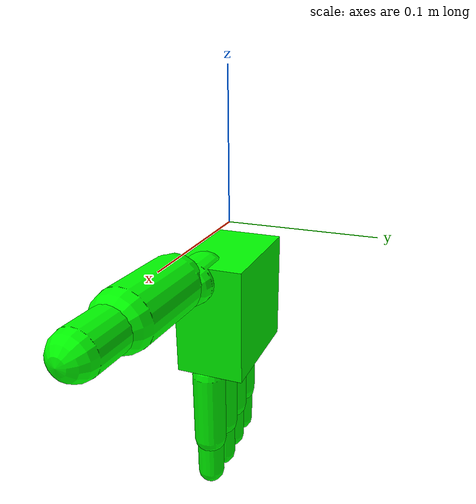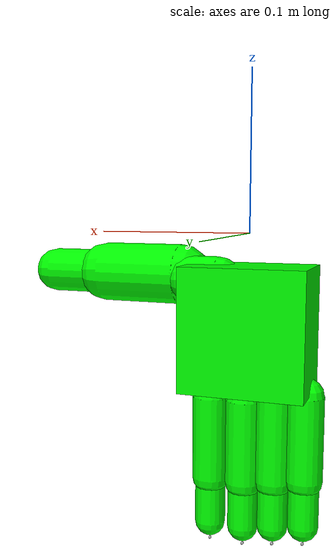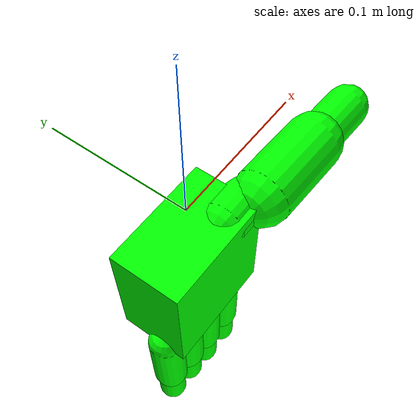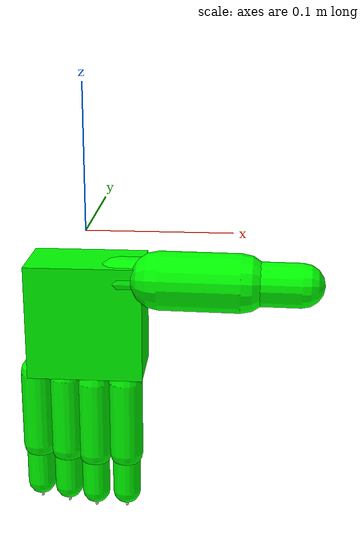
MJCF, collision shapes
<mujoco model="xhand_left">
  <compiler angle="radian" meshdir="assets/" />

  <default>
    <!-- disable all contacts and use explicit collision pairs -->
    <geom density="800" condim="1" contype="0" conaffinity="0" />
    <!-- with this setting, the response time is around 1s -->
    <position kp="300" dampratio="1.0" inheritrange="1" />
    <joint damping="0.0" armature="1.0" frictionloss="0.0" />
    <site size="0.005" type="sphere" rgba="1 0 0 1" group="3" />
  </default>

  <asset>
  <!-- 这里面定义了一堆 mesh，都是手的各个部分，这些 stl 对应的是各个连杆的几何外形-->
    <texture type="skybox" builtin="gradient" rgb1="0.3 0.5 0.7" rgb2="0 0 0" width="512"
      height="3072" />
    <texture type="2d" name="left_groundplane" builtin="checker" mark="edge" rgb1="0.2 0.3 0.4"
      rgb2="0.1 0.2 0.3"
      markrgb="0.8 0.8 0.8" width="300" height="300" />
    <material name="left_groundplane" texture="left_groundplane" texuniform="true"
      texrepeat="5 5"
      reflectance="0.2" />
    <mesh name="left_hand_link" content_type="model/stl" file="left_hand_link.STL" />
    <mesh name="left_hand_thumb_bend_link" content_type="model/stl"
      file="left_hand_thumb_bend_link.STL" />
    <mesh name="left_hand_thumb_rota_link1" content_type="model/stl"
      file="left_hand_thumb_rota_link1.STL" />
    <mesh name="left_hand_thumb_rota_link2" content_type="model/stl"
      file="left_hand_thumb_rota_link2.STL" />
    <mesh name="left_hand_index_bend_link" content_type="model/stl"
      file="left_hand_index_bend_link.STL" />
    <mesh name="left_hand_index_rota_link1" content_type="model/stl"
      file="left_hand_index_rota_link1.STL" />
    <mesh name="left_hand_index_rota_link2" content_type="model/stl"
      file="left_hand_index_rota_link2.STL" />
    <mesh name="left_hand_mid_link1" content_type="model/stl" file="left_hand_mid_link1.STL" />
    <mesh name="left_hand_mid_link2" content_type="model/stl" file="left_hand_mid_link2.STL" />
    <mesh name="left_hand_ring_link1" content_type="model/stl" file="left_hand_ring_link1.STL" />
    <mesh name="left_hand_ring_link2" content_type="model/stl" file="left_hand_ring_link2.STL" />
    <mesh name="left_hand_pinky_link1" content_type="model/stl" file="left_hand_pinky_link1.STL" />
    <mesh name="left_hand_pinky_link2" content_type="model/stl" file="left_hand_pinky_link2.STL" />
  </asset>

  <worldbody>
  <!-- 刚体节点，也就是刚体树结构，-->
  <!-- 可以看到下面的 body 是逐渐缩进去的，也就是说子 body 的位置是相对于父 body 的 -->
  <!-- 这个 body 可以理解为 urdf 里面的 link，但是注意，这个 body 是一个虚拟的容器，有坐标系这些，不是实体 mesh，后面的 geom 里面的才是实体 mesh，才有具体的几何形状 -->
  <!-- 需要记住，每一个body 下的joint 影响的是这个 body 相对他父 body 的状态，所以每一个 joint 的取名都是他的父 body 的名字加上_joint -->
    <body name="L_forearm_ty_link">
      <camera name="left_track" pos="0.868 -0.348 -0.175"
        xyaxes="0.037 0.999 -0.000 0.011 -0.000 1.000" />
      <inertial pos="0 0 0" mass="0.1" diaginertia="0.01 0.01 0.01" />
      <!-- 这个 joint 是用来控制左手腕（L）在 x 方向上的运动 -->
      <joint name="L_forearm_tx_link_joint" pos="0 0 0" axis="1 0 0" type="slide" range="-5 5"
      />
      <body name="L_forearm_tz_link">
        <inertial pos="0 0 0" mass="0.1" diaginertia="0.01 0.01 0.01" />
        <!-- 这个 joint 是用来控制左手腕（L）在 y 方向上的运动 -->
        <!-- 定义的是 tz_link 相对于 ty_link 的状态 -->
        <joint name="L_forearm_ty_link_joint" pos="0 0 0" axis="0 1 0" type="slide" range="-5 5"
        />
        <body name="L_forearm_roll_link">
          <inertial pos="0 0 0" mass="0.1" diaginertia="0.01 0.01 0.01" />
          <!-- 这个 joint 是用来控制左手腕（L）在 z 方向上的运动 -->
          <!-- 定义的是 roll_link 相对于 tz_link 的状态 -->
          <joint name="L_forearm_tz_link_joint" pos="0 0 0" axis="0 0 1" type="slide" range="-5 5"
          />
          <body name="L_forearm_pitch_link">
            <inertial pos="0 0 0" mass="0.1" diaginertia="0.01 0.01 0.01" />
            <!-- 这个 joint 是用来控制左手腕（L）的旋转 -->
            <joint name="L_forearm_roll_link_joint" pos="0 0 0" axis="0 0 1" range="-6.2 6.2"
            />
            <body name="L_forearm_yaw_link">
              <inertial pos="0 0 0" mass="0.1" diaginertia="0.01 0.01 0.01" />
              <!-- 这个 joint 是用来控制左手腕（L）的上下点头抬头 -->
              <joint name="L_forearm_pitch_link_joint" pos="0 0 0" axis="1 0 0" range="-6.2 6.2"
              />
              <body name="left_hand_link">
                <inertial pos="-0.00718397 -0.00342396 -0.0584832"
                  quat="0.712643 0.0910084 0.100904 0.688241" mass="0.529961"
                  diaginertia="0.000678163 0.000491768 0.000335587" />
                <!-- 这个 joint 是用来控制左手腕（L）的左右摆头 -->
                <joint name="L_forearm_yaw_link_joint" pos="0 0 0" axis="0 -1 0" range="-6.2 6.2"
                />
                <!-- 上面的这 6 个关节，其实就是在 MuJoCo 里手动搭了一个“6 自由度腕部基座” -->
                <!-- 前面也提到了，前面那些 body 都是虚拟容器，没有具体的几何形状，下面的 geo 才是真正的有碰撞的 mesh，会读取 STL 文件的 -->
                <!-- 还有一个要注意的，这个 geom 是visual，mesh，表示外观；下面的 type=box 表示碰撞形状 -->
                <geom name="left_hand_link_visual" type="mesh" contype="0" conaffinity="0" group="1"
                  density="0" rgba="0.866667 0.866667 0.890196 1" mesh="left_hand_link" />
                <geom name="collision_hand_left_palm_0" type="box" size="0.04 0.024 0.04"
                  pos="0 0 -0.06"
                  rgba="0 1 0 1" group="3" />
                <site name="left_palm" pos="0 0 0" type="box" size="0.01 0.02 0.03" quat="0 1 -1 0" />
                <body name="left_hand_thumb_bend_link" pos="0.0228 -0.0095 -0.0305">
                  <inertial pos="0.0145291 0.000901344 -0.000127912"
                    quat="-0.028902 0.68936 -0.0167067 0.72365" mass="0.00985534"
                    diaginertia="1.30648e-06 1.29142e-06 5.40957e-07" />
                  <joint name="left_hand_thumb_bend_joint" pos="0 0 0" axis="0 0 -1" range="0 1.83"
                  />
                  <geom name="left_thumb_bend_visual" type="mesh" contype="0" conaffinity="0"
                    group="1" density="0" rgba="0.890196 0.890196 0.913725 1"
                    mesh="left_hand_thumb_bend_link" />
                  <geom name="collision_hand_left_thumb_2" type="capsule" size="0.015"
                    fromto="0 0 0 0.02 0 0"
                    rgba="0 1 0 1" group="3" />
                  <body name="left_hand_thumb_rota_link1" pos="0.028599 -0.0083177 0.00178"
                    quat="0.99124 -0.130499 0.00265603 -0.0201745">
                    <inertial pos="0.0279279 0.000121046 -0.000277543"
                      quat="0.0994744 0.703642 -0.0845458 0.698459" mass="0.153197"
                      diaginertia="5.62164e-05 4.89587e-05 2.23807e-05" />
                    <joint name="left_hand_thumb_rota_joint1" pos="0 0 0" axis="0 1 0"
                      range="-1.05 1.57" />
                    <geom name="left_thumb_rota1_visual" type="mesh" contype="0" conaffinity="0"
                      group="1" density="0" rgba="1 1 1 1" mesh="left_hand_thumb_rota_link1" />
                    <geom name="collision_hand_left_thumb_1" type="capsule" size="0.02"
                      fromto="0 0 0 0.055 0 0" rgba="0 1 0 1"
                      group="3" />
                    <body name="left_hand_thumb_rota_link2" pos="0.0553 0 0">
                      <inertial pos="0.0224529 0.000690615 0.00314279"
                        quat="0.0604386 0.713745 -0.0199603 0.697508" mass="0.037401"
                        diaginertia="9.54692e-06 8.2705e-06 3.92141e-06" />
                      <joint name="left_hand_thumb_rota_joint2" pos="0 0 0" axis="0 1 0"
                        range="-0.17 1.83" />
                      <geom name="left_thumb_rota2_visual" type="mesh" contype="0" conaffinity="0"
                        group="1" density="0" rgba="0.384314 0.384314 0.384314 1"
                        mesh="left_hand_thumb_rota_link2" />
                      <geom name="collision_hand_left_thumb_0" type="capsule" size="0.015"
                        fromto="0 0 0 0.04 0 0"
                        rgba="0 1 0 1"
                        group="3" />
                      <geom size="0.001" pos="0.0504017 0 0" contype="0" conaffinity="0" group="1"
                        density="0" rgba="0.698039 0.698039 0.698039 1" />
                      <site name="left_thumb_tip" pos="0.04 0 -0.012" />
                      <site name="track_hand_left_thumb_tip" pos="0.04 0 -0.012" />
                      <site name="trace_hand_left_thumb_tip" pos="0.04 0 -0.012" />
                    </body>
                  </body>
                </body>
                <body name="left_hand_index_bend_link" pos="0.0265 -0.0065 -0.0899">
                  <inertial pos="-0.000134545 -0.000675884 0.00420851"
                    quat="0.999797 0.0190041 0.00232573 0.00634399" mass="0.0677836"
                    diaginertia="2.16573e-05 2.09935e-05 3.36931e-06" />
                  <joint name="left_hand_index_bend_joint" pos="0 0 0" axis="0 1 0"
                    range="-0.175 0.175" />
                  <geom name="left_index_bend_visual" type="mesh" contype="0" conaffinity="0"
                    group="1" density="0" rgba="0.988235 0.737255 0.517647 1"
                    mesh="left_hand_index_bend_link" />

                  <body name="left_hand_index_rota_link1" pos="0 0 -0.0178">
                    <inertial pos="0.000139769 0.000800517 -0.0356039"
                      quat="0.999865 -0.00809181 0.0131314 0.00566203" mass="0.0630216"
                      diaginertia="2.05301e-05 1.92461e-05 4.135e-06" />
                    <joint name="left_hand_index_joint1" pos="0 0 0" axis="-1 0 0" range="0 1.92"
                    />
                    <geom name="left_index_rota1_visual" type="mesh" contype="0" conaffinity="0"
                      group="1" density="0" rgba="1 1 1 1" mesh="left_hand_index_rota_link1" />
                    <geom name="collision_hand_left_index_1" type="capsule" size="0.012"
                      fromto="0 0 0 0 0 -0.055" rgba="0 1 0 1" group="3" />
                    <body name="left_hand_index_rota_link2" pos="0 0 -0.0558">
                      <inertial pos="0.000338569 -1.93676e-05 -0.0231329"
                        quat="0.935384 -0.00588977 0.0260883 0.35262" mass="0.0179923"
                        diaginertia="3.02409e-06 3.01968e-06 9.82703e-07" />
                      <joint name="left_hand_index_joint2" pos="0 0 0" axis="-1 0 0" range="0 1.92"
                      />
                      <geom name="left_index_rota2_visual" type="mesh" contype="0" conaffinity="0"
                        group="1" density="0" rgba="0.866667 0.866667 0.890196 1"
                        mesh="left_hand_index_rota_link2" />
                      <geom name="collision_hand_left_index_0" type="capsule" size="0.01"
                        fromto="0 0 0 0 0 -0.03" rgba="0 1 0 1" group="3" />
                      <geom size="0.001" pos="0 0 -0.0425" contype="0" conaffinity="0" group="1"
                        density="0" rgba="0.698039 0.698039 0.698039 1" />
                      <site name="left_index_tip" pos="0 -0.004 -0.027" />
                      <site name="track_hand_left_index_tip" pos="0 -0.004 -0.027" />
                      <site name="trace_hand_left_index_tip" pos="0 -0.004 -0.027" />
                    </body>
                  </body>
                </body>
                <body name="left_hand_mid_link1" pos="0.004 -0.0065 -0.1082">
                  <inertial pos="0.00013977 0.000800517 -0.0356039"
                    quat="0.999865 -0.00809181 0.0131314 0.00566198" mass="0.0630216"
                    diaginertia="2.05301e-05 1.92461e-05 4.135e-06" />
                  <joint name="left_hand_mid_joint1" pos="0 0 0" axis="-1 0 0" range="0 1.92"
                  />
                  <geom name="left_middle_link1_visual" type="mesh" contype="0" conaffinity="0"
                    group="1" density="0" rgba="1 1 1 1" mesh="left_hand_mid_link1" />
                  <geom name="collision_hand_left_middle_1" type="capsule" size="0.012"
                    fromto="0 0 0 0 0 -0.055" rgba="0 1 0 1" group="3" />
                  <body name="left_hand_mid_link2" pos="0 0 -0.0558">
                    <inertial pos="0.000338572 -1.93625e-05 -0.0231328"
                      quat="0.935372 -0.00588866 0.0260883 0.352653" mass="0.0179923"
                      diaginertia="3.02409e-06 3.01968e-06 9.82702e-07" />
                    <joint name="left_hand_mid_joint2" pos="0 0 0" axis="-1 0 0" range="0 1.92"
                    />
                    <geom name="left_middle_link2_visual" type="mesh" contype="0" conaffinity="0"
                      group="1" density="0" rgba="0.866667 0.866667 0.890196 1"
                      mesh="left_hand_mid_link2" />
                    <geom name="collision_hand_left_middle_0" type="capsule" size="0.01"
                      fromto="0 0 0 0 0 -0.03" rgba="0 1 0 1" group="3" />
                    <geom size="0.001" pos="0 0 -0.0425" contype="0" conaffinity="0" group="1"
                      density="0" rgba="0.698039 0.698039 0.698039 1" />
                    <site name="left_middle_tip" pos="0 -0.004 -0.027" />
                    <site name="track_hand_left_middle_tip" pos="0 -0.004 -0.027" />
                    <site name="trace_hand_left_middle_tip" pos="0 -0.004 -0.027" />
                  </body>
                </body>
                <body name="left_hand_ring_link1" pos="-0.016 -0.0065 -0.1052">
                  <inertial pos="0.00013977 0.000800517 -0.0356039"
                    quat="0.999865 -0.00809184 0.0131314 0.00566198" mass="0.0630216"
                    diaginertia="2.05301e-05 1.92461e-05 4.13501e-06" />
                  <joint name="left_hand_ring_joint1" pos="0 0 0" axis="-1 0 0" range="0 1.92"
                  />
                  <geom name="left_ring_link1_visual" type="mesh" contype="0" conaffinity="0"
                    group="1" density="0" rgba="1 1 1 1" mesh="left_hand_ring_link1" />
                  <geom name="collision_hand_left_ring_1" type="capsule" size="0.012"
                    fromto="0 0 0 0 0 -0.055" rgba="0 1 0 1" group="3" />
                  <body name="left_hand_ring_link2" pos="0 0 -0.0558">
                    <inertial pos="0.000338569 -1.93676e-05 -0.0231329"
                      quat="0.935384 -0.00588977 0.0260883 0.35262" mass="0.0179923"
                      diaginertia="3.02409e-06 3.01968e-06 9.82703e-07" />
                    <joint name="left_hand_ring_joint2" pos="0 0 0" axis="-1 0 0" range="0 1.92"
                    />
                    <geom name="left_ring_link2_visual" type="mesh" contype="0" conaffinity="0"
                      group="1" density="0" rgba="0.866667 0.866667 0.890196 1"
                      mesh="left_hand_ring_link2" />
                    <geom name="collision_hand_left_ring_0" type="capsule" size="0.01"
                      fromto="0 0 0 0 0 -0.03" rgba="0 1 0 1" group="3" />
                    <geom size="0.001" pos="0 0 -0.0425" contype="0" conaffinity="0" group="1"
                      density="0" rgba="0.698039 0.698039 0.698039 1" />
                    <site name="left_ring_tip" pos="0 -0.004 -0.027" />
                    <site name="track_hand_left_ring_tip" pos="0 -0.004 -0.027" />
                    <site name="trace_hand_left_ring_tip" pos="0 -0.004 -0.027" />
                  </body>
                </body>
                <body name="left_hand_pinky_link1" pos="-0.036 -0.0065 -0.1022">
                  <inertial pos="0.000139769 0.000800517 -0.0356039"
                    quat="0.999865 -0.00809183 0.0131314 0.00566202" mass="0.0630216"
                    diaginertia="2.05301e-05 1.92461e-05 4.135e-06" />
                  <joint name="left_hand_pinky_joint1" pos="0 0 0" axis="-1 0 0" range="0 1.92"
                  />
                  <geom name="left_pinky_link1_visual" type="mesh" contype="0" conaffinity="0"
                    group="1" density="0" rgba="1 1 1 1" mesh="left_hand_pinky_link1" />
                  <geom name="collision_hand_left_pinky_1" type="capsule" size="0.012"
                    fromto="0 0 0 0 0 -0.055" rgba="0 1 0 1" group="3" />
                  <body name="left_hand_pinky_link2" pos="0 0 -0.0558">
                    <inertial pos="0.000338573 -1.93618e-05 -0.0231328"
                      quat="0.935377 -0.00588901 0.0260881 0.35264" mass="0.0179923"
                      diaginertia="3.02409e-06 3.01968e-06 9.82702e-07" />
                    <joint name="left_hand_pinky_joint2" pos="0 0 0" axis="-1 0 0" range="0 1.92"
                    />
                    <geom name="left_pinky_link2_visual" type="mesh" contype="0" conaffinity="0"
                      group="1" density="0" rgba="0.866667 0.866667 0.890196 1"
                      mesh="left_hand_pinky_link2" />
                    <geom name="collision_hand_left_pinky_0" type="capsule" size="0.01"
                      fromto="0 0 0 0 0 -0.03" rgba="0 1 0 1" group="3" />
                    <geom size="0.001" pos="0 0 -0.0425" contype="0" conaffinity="0" group="1"
                      density="0" rgba="0.698039 0.698039 0.698039 1" />
                    <site name="left_pinky_tip" pos="0 -0.004 -0.027" />
                    <site name="track_hand_left_pinky_tip" pos="0 -0.004 -0.027" />
                    <site name="trace_hand_left_pinky_tip" pos="0 -0.004 -0.027" />
                  </body>
                </body>
              </body>
            </body>
          </body>
        </body>
      </body>
    </body>
  </worldbody>

  <actuator>
  <!-- actuator 定义的是打算怎么驱动这个关节 -->
  <!-- joint 定义的是这个关节怎么动（上下左右），actuator 定义的是怎么驱动它 -->
  <!-- 这些 actuator 都是 position actuator，位置执行器，就是给当前 joint 施加一个目标位置，然后仿真器将这个关节推到目标位置 -->
    <!-- Global position and rotation joints -->
    <!-- kp 是系数增益，越大，移动得越快 -->
    <position name="L_forearm_tx_position" joint="L_forearm_tx_link_joint" kp="1000" />
    <position name="L_forearm_ty_position" joint="L_forearm_ty_link_joint" kp="1000" />
    <position name="L_forearm_tz_position" joint="L_forearm_tz_link_joint" kp="1000" />
    <position name="L_forearm_roll_position" joint="L_forearm_roll_link_joint" kp="1000" />
    <position name="L_forearm_pitch_position" joint="L_forearm_pitch_link_joint" kp="1000" />
    <position name="L_forearm_yaw_position" joint="L_forearm_yaw_link_joint" kp="1000" />

    <!-- Thumb joints -->
    <position name="left_thumb_bend_position" joint="left_hand_thumb_bend_joint" />
    <position name="left_thumb_rota1_position" joint="left_hand_thumb_rota_joint1" />
    <position name="left_thumb_rota2_position" joint="left_hand_thumb_rota_joint2" />

    <!-- Index joints -->
    <position name="left_index_bend_position" joint="left_hand_index_bend_joint" />
    <position name="left_index_joint1_position" joint="left_hand_index_joint1" />
    <position name="left_index_joint2_position" joint="left_hand_index_joint2" />

    <!-- Middle joints -->
    <position name="left_middle_joint1_position" joint="left_hand_mid_joint1" />
    <position name="left_middle_joint2_position" joint="left_hand_mid_joint2" />

    <!-- Ring joints -->
    <position name="left_ring_joint1_position" joint="left_hand_ring_joint1" />
    <position name="left_ring_joint2_position" joint="left_hand_ring_joint2" />

    <!-- Pinky joints -->
    <position name="left_pinky_joint1_position" joint="left_hand_pinky_joint1" />
    <position name="left_pinky_joint2_position" joint="left_hand_pinky_joint2" />
  </actuator>
</mujoco>
